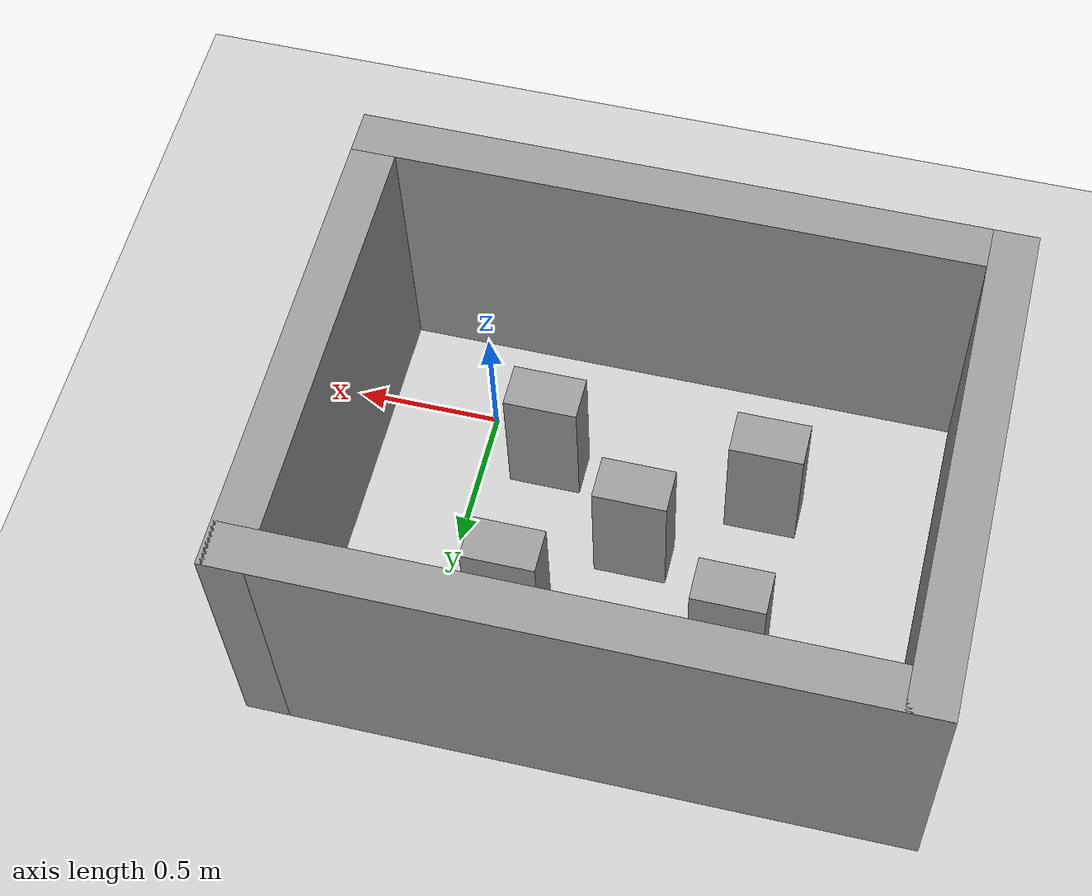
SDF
<sdf version="1.6">
 <world name="default">
  <light name="sun" type="directional">
   <pose>0 0 10 0 -0 0</pose>
   <diffuse>0.8 0.8 0.8 1</diffuse>
   <specular>0.2 0.2 0.2 1</specular>
   <attenuation>
    <range>1000</range>
    <constant>0.9</constant>
    <linear>0.01</linear>
    <quadratic>0.001</quadratic>
   </attenuation>
   <direction>-0.5 0.1 -0.9</direction>
  </light>
  <model name="ground_plane">
   <static>1</static>
   <link name="link">
    <collision name="collision">
     <geometry><plane><normal>0 0 1</normal><size>100 100</size></plane></geometry>
     <surface><friction><ode><mu>100</mu><mu2>50</mu2></ode></friction></surface>
    </collision>
    <visual name="visual">
     <cast_shadows>0</cast_shadows>
     <geometry><plane><normal>0 0 1</normal><size>100 100</size></plane></geometry>
     <material>
      <script><uri>file://media/materials/scripts/gazebo.material</uri><name>Gazebo/Grey</name></script>
     </material>
    </visual>
   </link>
  </model>
  <gravity>0 0 -9.8</gravity>
  <magnetic_field>6e-06 2.3e-05 -4.2e-05</magnetic_field>
  <atmosphere type="adiabatic"/>
  <physics name="default_physics" default="0" type="ode">
   <max_step_size>0.001</max_step_size>
   <real_time_factor>1</real_time_factor>
   <real_time_update_rate>1000</real_time_update_rate>
  </physics>
  <scene><ambient>0.4 0.4 0.4 1</ambient><background>0.7 0.7 0.7 1</background><shadows>1</shadows></scene>
  <audio><device>default</device></audio>
  <spherical_coordinates>
   <surface_model>EARTH_WGS84</surface_model>
   <latitude_deg>0</latitude_deg>
   <longitude_deg>0</longitude_deg>
   <elevation>0</elevation>
   <heading_deg>0</heading_deg>
  </spherical_coordinates>
  <model name="lc_office">
   <pose>-0.60208 0.398433 0 0 -0 0</pose>
   <link name="Wall_13">
    <collision name="Wall_13_Collision">
     <geometry><box><size>0.25 0.15 0.5</size></box></geometry>
     <pose>0 0 0.25 0 -0 0</pose>
    </collision>
    <visual name="Wall_13_Visual">
     <pose>0 0 0.25 0 -0 0</pose>
     <geometry><box><size>0.25 0.15 0.5</size></box></geometry>
     <material>
      <script><uri>file://media/materials/scripts/gazebo.material</uri><name>Gazebo/Grey</name></script>
      <ambient>1 1 1 1</ambient>
     </material>
     <meta><layer>0</layer></meta>
    </visual>
    <pose>0.37 -0.25 0 0 -0 0</pose>
   </link>
   <link name="Wall_16">
    <collision name="Wall_16_Collision">
     <geometry><box><size>0.25 0.15 0.5</size></box></geometry>
     <pose>0 0 0.25 0 -0 0</pose>
    </collision>
    <visual name="Wall_16_Visual">
     <pose>0 0 0.25 0 -0 0</pose>
     <geometry><box><size>0.25 0.15 0.5</size></box></geometry>
     <material>
      <script><uri>file://media/materials/scripts/gazebo.material</uri><name>Gazebo/Grey</name></script>
      <ambient>1 1 1 1</ambient>
     </material>
     <meta><layer>0</layer></meta>
    </visual>
    <pose>0.36 0.34 0 0 -0 0</pose>
   </link>
   <link name="Wall_18">
    <collision name="Wall_18_Collision">
     <geometry><box><size>0.25 0.15 0.5</size></box></geometry>
     <pose>0 0 0.25 0 -0 0</pose>
    </collision>
    <visual name="Wall_18_Visual">
     <pose>0 0 0.25 0 -0 0</pose>
     <geometry><box><size>0.25 0.15 0.5</size></box></geometry>
     <material>
      <script><uri>file://media/materials/scripts/gazebo.material</uri><name>Gazebo/Grey</name></script>
      <ambient>1 1 1 1</ambient>
     </material>
     <meta><layer>0</layer></meta>
    </visual>
    <pose>0 0.03 0 0 -0 0</pose>
   </link>
   <link name="Wall_21">
    <collision name="Wall_21_Collision">
     <geometry><box><size>1.73 0.15 1</size></box></geometry>
     <pose>0 0 0.5 0 -0 0</pose>
    </collision>
    <visual name="Wall_21_Visual">
     <pose>0 0 0.5 0 -0 0</pose>
     <geometry><box><size>1.73 0.15 1</size></box></geometry>
     <material>
      <script><uri>file://media/materials/scripts/gazebo.material</uri><name>Gazebo/Grey</name></script>
      <ambient>1 1 1 1</ambient>
     </material>
     <meta><layer>0</layer></meta>
    </visual>
    <pose>1.05 0 0 0 -0 1.5708</pose>
   </link>
   <link name="Wall_27">
    <collision name="Wall_27_Collision">
     <geometry><box><size>2.25 0.15 1</size></box></geometry>
     <pose>0 0 0.5 0 -0 0</pose>
    </collision>
    <visual name="Wall_27_Visual">
     <pose>0 0 0.5 0 -0 0</pose>
     <geometry><box><size>2.25 0.15 1</size></box></geometry>
     <material>
      <script><uri>file://media/materials/scripts/gazebo.material</uri><name>Gazebo/Grey</name></script>
      <ambient>1 1 1 1</ambient>
     </material>
     <meta><layer>0</layer></meta>
    </visual>
    <pose>0 0.79 0 0 -0 3.14159</pose>
   </link>
   <link name="Wall_29">
    <collision name="Wall_29_Collision">
     <geometry><box><size>2.25 0.15 1</size></box></geometry>
     <pose>0 0 0.5 0 -0 0</pose>
    </collision>
    <visual name="Wall_29_Visual">
     <pose>0 0 0.5 0 -0 0</pose>
     <geometry><box><size>2.25 0.15 1</size></box></geometry>
     <material>
      <script><uri>file://media/materials/scripts/gazebo.material</uri><name>Gazebo/Grey</name></script>
      <ambient>1 1 1 1</ambient>
     </material>
     <meta><layer>0</layer></meta>
    </visual>
    <pose>0 -0.79 0 0 -0 3.14159</pose>
   </link>
   <link name="Wall_32">
    <collision name="Wall_32_Collision">
     <geometry><box><size>1.73 0.15 1</size></box></geometry>
     <pose>0 0 0.5 0 -0 0</pose>
    </collision>
    <visual name="Wall_32_Visual">
     <pose>0 0 0.5 0 -0 0</pose>
     <geometry><box><size>1.73 0.15 1</size></box></geometry>
     <material>
      <script><uri>file://media/materials/scripts/gazebo.material</uri><name>Gazebo/Grey</name></script>
      <ambient>1 1 1 1</ambient>
     </material>
     <meta><layer>0</layer></meta>
    </visual>
    <pose>-1.05 0 0 0 -0 -1.5708</pose>
   </link>
   <link name="Wall_5">
    <collision name="Wall_5_Collision">
     <geometry><box><size>0.25 0.15 0.5</size></box></geometry>
     <pose>0 0 0.25 0 -0 0</pose>
    </collision>
    <visual name="Wall_5_Visual">
     <pose>0 0 0.25 0 -0 0</pose>
     <geometry><box><size>0.25 0.15 0.5</size></box></geometry>
     <material>
      <script><uri>file://media/materials/scripts/gazebo.material</uri><name>Gazebo/Grey</name></script>
      <ambient>1 1 1 1</ambient>
     </material>
     <meta><layer>0</layer></meta>
    </visual>
    <pose>-0.387 0.322 0 0 -0 0</pose>
   </link>
   <link name="Wall_9">
    <collision name="Wall_9_Collision">
     <geometry><box><size>0.25 0.15 0.5</size></box></geometry>
     <pose>0 0 0.25 0 -0 0</pose>
    </collision>
    <visual name="Wall_9_Visual">
     <pose>0 0 0.25 0 -0 0</pose>
     <geometry><box><size>0.25 0.15 0.5</size></box></geometry>
     <material>
      <script><uri>file://media/materials/scripts/gazebo.material</uri><name>Gazebo/Grey</name></script>
      <ambient>1 1 1 1</ambient>
     </material>
     <meta><layer>0</layer></meta>
    </visual>
    <pose>-0.398 -0.242 0 0 -0 0</pose>
   </link>
   <static>1</static>
  </model>
 </world>
</sdf>
